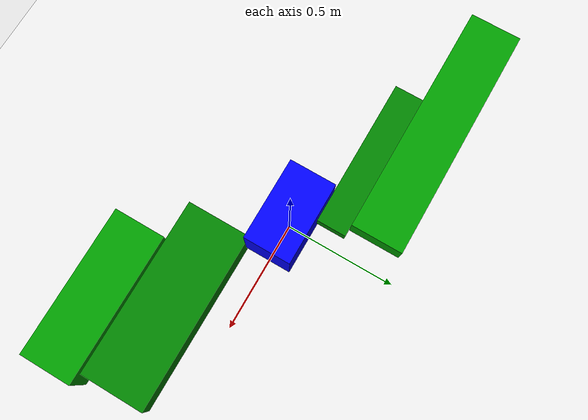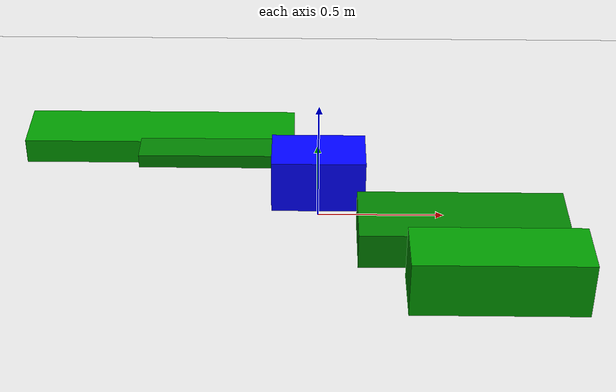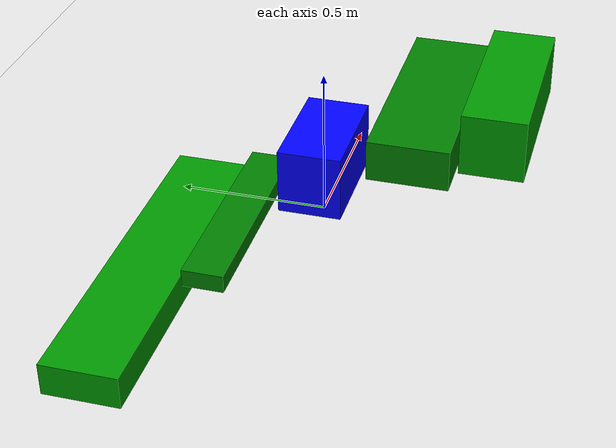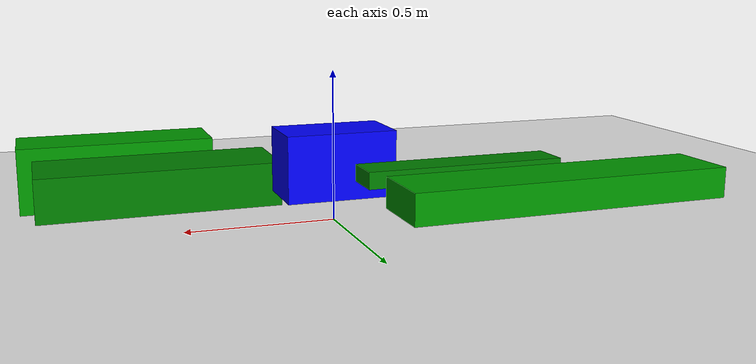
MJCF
<mujoco>
    <worldbody>
    <light diffuse=".5 .5 .5" pos="0 0 3" dir="0 0 -1"/>
    <geom type="plane" size="5 5 0.1" rgba=".9 0.9 0.9 1"/>
    <body name="main body" pos="0 0 .2">
        <joint type="free"/>
        <geom type="box" size="0.1823618432185498 0.10347852472478945 0.10960618824937188" rgba="0 0 1 1" mass="1"/>
        <site name="marker" pos="0 0 0" size="0.05"/>
        <site name="robot_center" pos="0 0 0" size="0.01"/>
        <body name="left_leg1" pos="-0.38 0.16803071267335523 -0.02040289132823906">
            <joint name="left_leg1_joint" type="hinge" axis="0 1 0" pos="0 0 0"/>
            <geom type="box" size="0.3379841249856572 0.06455218794856579 0.0280399621114123" rgba="0 .5 0 1" mass="1"/>
            <body name="left_leg2" pos="-0.2664028669818799 0.18098268318293542 -0.04">
                <joint name="left_leg2_joint" type="hinge" axis="0 1 0" pos="0 0 0"/>
                <geom type="box" size="0.5475043629076538 0.11643049523436962 0.05111184958501502" rgba="0 .6 0 1" mass="1"/>
            </body>
        </body>
        <body name="right_leg1" pos="0.5473671382621346 -0.24701094092847187 -0.08904395584949436">
            <joint name="right_leg1_joint" type="hinge" axis="0 1 0" pos="0 0 0"/>
            <geom type="box" size="0.39752449761803 0.14353241620368243 0.07370081633151675" rgba="0 .5 0 1" mass="1"/>
            <body name="right_leg2" pos="0.11462644321854992 -0.258576841961511 -0.010591158288174191">
                <joint name="right_leg2_joint" type="hinge" axis="0 1 0" pos="0 0 0"/>
                <geom type="box" size="0.33237558943717926 0.11504442575782857 0.12773692616278537" rgba="0 .6 0 1" mass="1"/>
            </body>
        </body>
    </body>
    </worldbody>
    <sensor>
        <framepos objtype="site" objname="marker"/>
        <velocimeter name="robot_velocity" site="robot_center"/>
    </sensor>
    <actuator>
        <position joint="left_leg1_joint" kp="10"/>
        <position joint="left_leg2_joint" kp="10"/>
        <position joint="right_leg1_joint" kp="10"/>
        <position joint="right_leg2_joint" kp="10"/>
    </actuator>
</mujoco>
